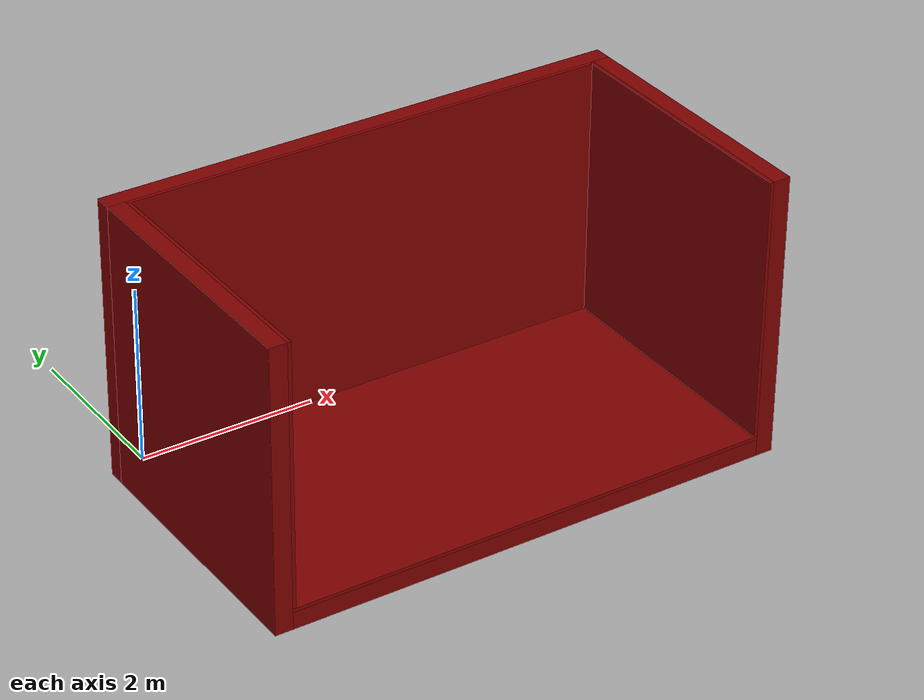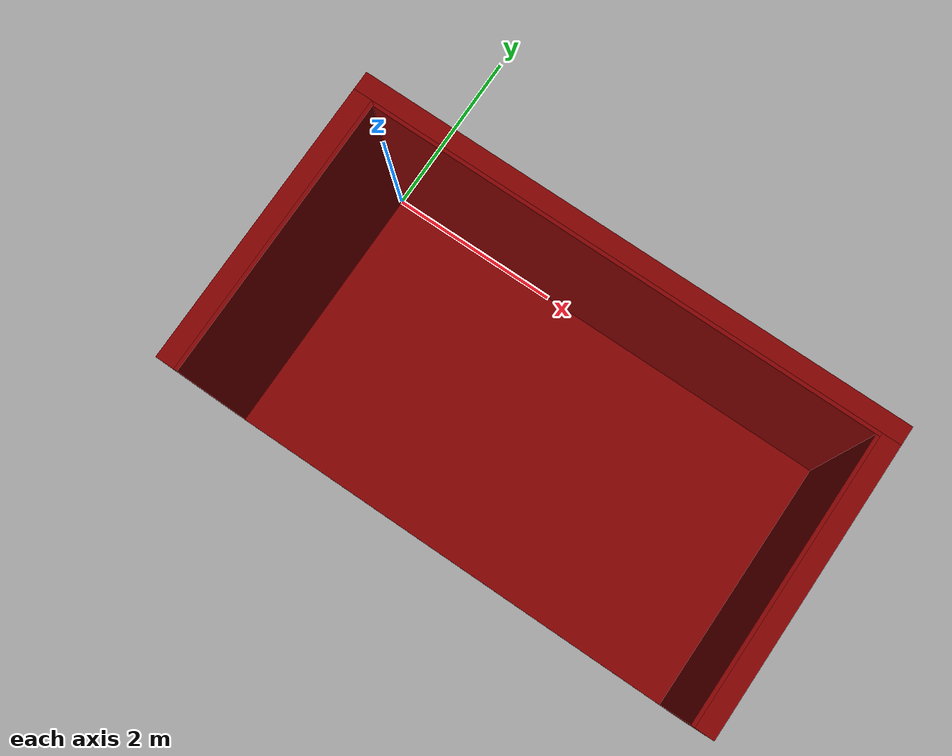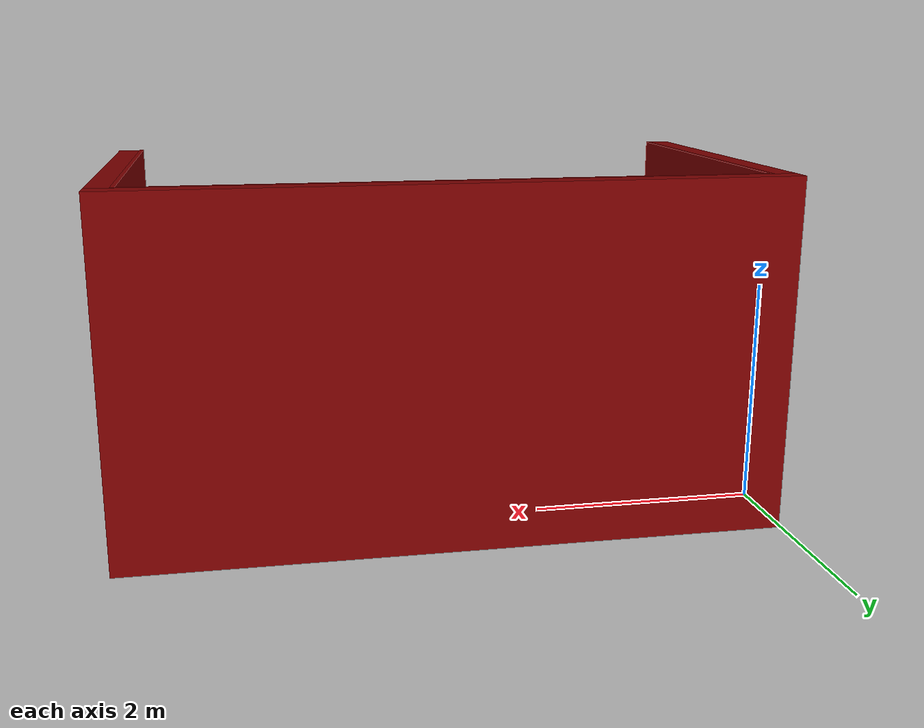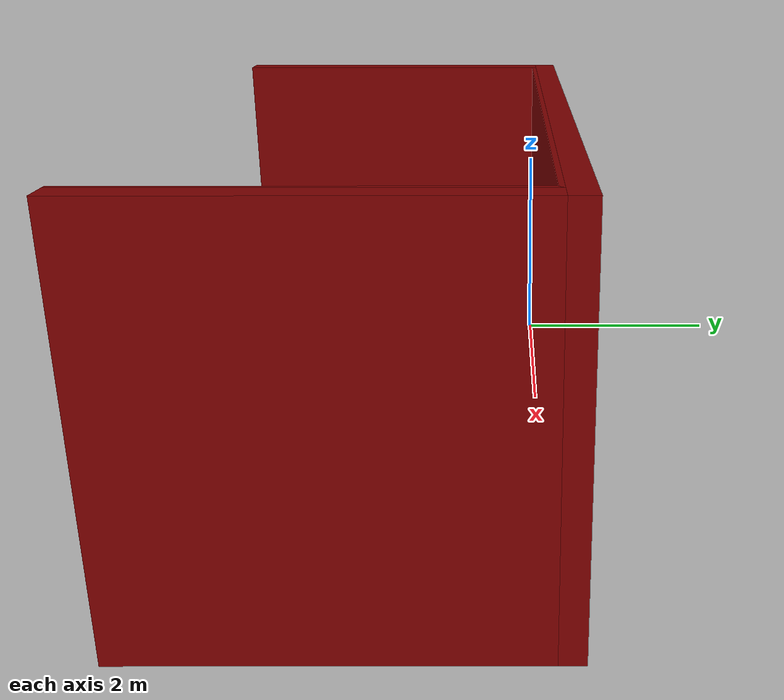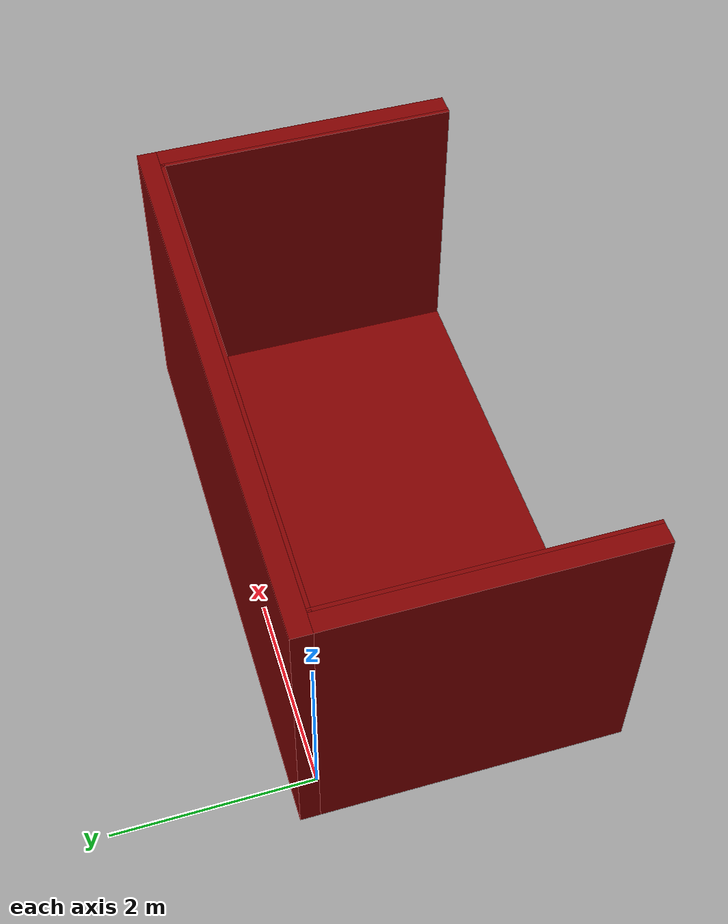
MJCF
<mujoco>

    <asset>
        <texture type="skybox" builtin="flat" rgb1="1 1 1" rgb2="1 1 1" width="256" height="1536" />
        <texture type="2d" name="wall_room_wall" file="rooms/assets/textures/bricks/red_bricks.png" />
        <material name="wall_room_wall_mat" texture="wall_room_wall" texuniform="true"
            texrepeat="3 3" shininess="0.01" reflectance="0.1" />
    </asset>

    <asset>
        <texture type="2d" name="wall_backing_room_wall"
            file="rooms/assets/textures/flat/light_gray.png" />
        <material name="wall_backing_room_wall_mat" texture="wall_backing_room_wall"
            texuniform="true" texrepeat="3 3" shininess="0.01" reflectance="0.1" />
    </asset>

    <asset>
        <texture type="2d" name="wall_left_room_wall"
            file="rooms/assets/textures/bricks/red_bricks.png" />
        <material name="wall_left_room_wall_mat" texture="wall_left_room_wall" texuniform="true"
            texrepeat="3 3" shininess="0.01" reflectance="0.1" />
    </asset>

    <asset>
        <texture type="2d" name="wall_left_backing_room_wall"
            file="rooms/assets/textures/flat/light_gray.png" />
        <material name="wall_left_backing_room_wall_mat" texture="wall_left_backing_room_wall"
            texuniform="true" texrepeat="3 3" shininess="0.01" reflectance="0.1" />
    </asset>

    <asset>
        <texture type="2d" name="wall_right_room_wall"
            file="rooms/assets/textures/bricks/red_bricks.png" />
        <material name="wall_right_room_wall_mat" texture="wall_right_room_wall" texuniform="true"
            texrepeat="3 3" shininess="0.01" reflectance="0.1" />
    </asset>

    <asset>
        <texture type="2d" name="wall_right_backing_room_wall"
            file="rooms/assets/textures/flat/light_gray.png" />
        <material name="wall_right_backing_room_wall_mat" texture="wall_right_backing_room_wall"
            texuniform="true" texrepeat="3 3" shininess="0.01" reflectance="0.1" />
    </asset>

    <asset>
        <texture type="2d" name="floor_room_wall"
            file="rooms/assets/textures/tiles/concrete_tiles.png" />
        <material name="floor_room_wall_mat" texture="floor_room_wall" texuniform="true"
            texrepeat="0.5 0.5" />
    </asset>

    <asset>
        <texture type="2d" name="floor_backing_room_wall"
            file="rooms/assets/textures/flat/light_gray.png" />
        <material name="floor_backing_room_wall_mat" texture="floor_backing_room_wall"
            texuniform="true" texrepeat="0.5 0.5" />
    </asset>

    <worldbody>

        <body name="wall_room_main" pos="2.75 0.02 1.5" quat="-0.707107 0.707107 0 0">
            <geom name="wall_room_g0" size="2.79 1.5 0.02" type="box" rgba="0.5 0 0 1" />
            <geom name="wall_room_g0_vis" size="2.79 1.5 0.02" type="box" contype="0"
                conaffinity="0" group="1" mass="0" material="wall_room_wall_mat" />
            <site name="wall_room_default_site" pos="0 0 0" size="0.002" rgba="1 0 0 -1" />
        </body>

        <body name="wall_backing_room_main" pos="2.75 0.14 1.38" quat="-0.707107 0.707107 0 0">
            <geom name="wall_backing_room_g0" size="2.99 1.62 0.1" type="box" rgba="0.5 0 0 1" />
            <geom name="wall_backing_room_g0_vis" size="2.99 1.62 0.1" type="box" contype="0"
                conaffinity="0" group="1" mass="0" material="wall_backing_room_wall_mat" />
            <site name="wall_backing_room_default_site" pos="0 0 0" size="0.002" rgba="1 0 0 -1" />
        </body>

        <body name="wall_left_room_main" pos="-0.02 -1.5 1.5" quat="0.5 0.5 -0.5 -0.5">
            <geom name="wall_left_room_g0" size="1.54 1.5 0.02" type="box" rgba="0.5 0 0 1" />
            <geom name="wall_left_room_g0_vis" size="1.54 1.5 0.02" type="box" contype="0"
                conaffinity="0" group="1" mass="0" material="wall_left_room_wall_mat" />
            <site name="wall_left_room_default_site" pos="0 0 0" size="0.002" rgba="1 0 0 -1" />
        </body>

        <body name="wall_left_backing_room_main" pos="-0.14 -1.5 1.38" quat="0.5 0.5 -0.5 -0.5">
            <geom name="wall_left_backing_room_g0" size="1.54 1.62 0.1" type="box" rgba="0.5 0 0 1" />
            <geom name="wall_left_backing_room_g0_vis" size="1.54 1.62 0.1" type="box" contype="0"
                conaffinity="0" group="1" mass="0" material="wall_left_backing_room_wall_mat" />
            <site name="wall_left_backing_room_default_site" pos="0 0 0" size="0.002"
                rgba="1 0 0 -1" />
        </body>

        <body name="wall_right_room_main" pos="5.52 -1.5 1.5" quat="0.5 -0.5 -0.5 0.5">
            <geom name="wall_right_room_g0" size="1.54 1.5 0.02" type="box" rgba="0.5 0 0 1" />
            <geom name="wall_right_room_g0_vis" size="1.54 1.5 0.02" type="box" contype="0"
                conaffinity="0" group="1" mass="0" material="wall_right_room_wall_mat" />
            <site name="wall_right_room_default_site" pos="0 0 0" size="0.002" rgba="1 0 0 -1" />
        </body>

        <body name="wall_right_backing_room_main" pos="5.64 -1.5 1.38" quat="0.5 -0.5 -0.5 0.5">
            <geom name="wall_right_backing_room_g0" size="1.54 1.62 0.1" type="box" rgba="0.5 0 0 1" />
            <geom name="wall_right_backing_room_g0_vis" size="1.54 1.62 0.1" type="box" contype="0"
                conaffinity="0" group="1" mass="0" material="wall_right_backing_room_wall_mat" />
            <site name="wall_right_backing_room_default_site" pos="0 0 0" size="0.002"
                rgba="1 0 0 -1" />
        </body>

        <body name="floor_room_main" pos="2.75 -1.5 -0.02" quat="0.707107 0 0 0.707107">
            <geom name="floor_room_g0" size="1.54 2.79 0.02" type="box" rgba="0.5 0 0 1" />
            <geom name="floor_room_g0_vis" size="1.54 2.79 0.02" type="box" contype="0"
                conaffinity="0" group="1" mass="0" material="floor_room_wall_mat" />
            <site name="floor_room_default_site" pos="0 0 0" size="0.002" rgba="1 0 0 -1" />
        </body>

        <body name="floor_backing_room_main" pos="2.75 -1.5 -0.14" quat="0.707107 0 0 0.707107">
            <geom name="floor_backing_room_g0" size="1.54 2.79 0.1" type="box" rgba="0.5 0 0 1" />
            <geom name="floor_backing_room_g0_vis" size="1.54 2.79 0.1" type="box" contype="0"
                conaffinity="0" group="1" mass="0" material="floor_backing_room_wall_mat" />
            <site name="floor_backing_room_default_site" pos="0 0 0" size="0.002" rgba="1 0 0 -1" />
        </body>

    </worldbody>
</mujoco>
